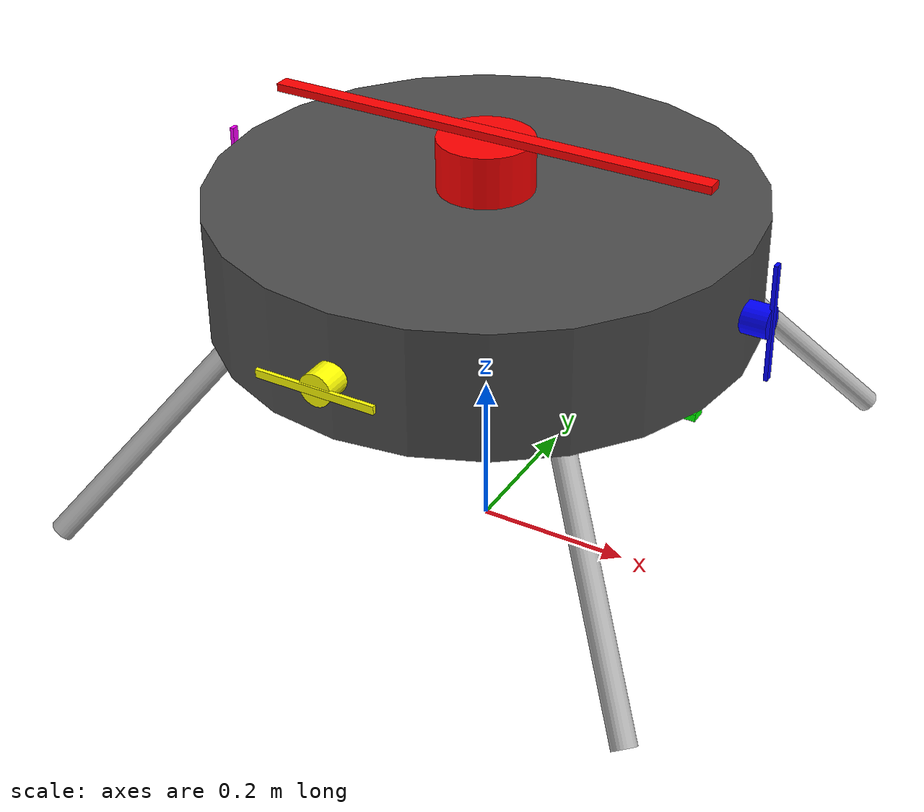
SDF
<?xml version="1.0" encoding="UTF-8"?>
<sdf version="1.9">
  <model name="ifodrone">

    <!-- START 1 METR NAD ZIEMIĄ -->
    <pose>0 0 0.4 0 0 0</pose>

    <!-- ================= KADŁUB ================= -->
    <link name="base_link">
      <pose>0 0 0 0 0 0</pose>
      <inertial>
        <mass>2.0</mass>
        <inertia>
          <ixx>0.03</ixx>
          <iyy>0.03</iyy>
          <izz>0.05</izz>
        </inertia>
      </inertial>

      <collision name="base_collision">
        <geometry>
          <cylinder>
            <radius>0.34</radius>
            <length>0.16</length>
          </cylinder>
        </geometry>
      </collision>

      <visual name="base_visual">
        <geometry>
          <cylinder>
            <radius>0.34</radius>
            <length>0.16</length>
          </cylinder>
        </geometry>
        <material>
          <diffuse>0.3 0.3 0.3 1</diffuse>
        </material>
      </visual>

      <!-- LEG FRONT RIGHT -->
      <collision name="leg_front_right_collision">
        <pose>0.3 -0.3 -0.20 -0.7854 0 0.7854</pose>
        <geometry>
          <cylinder>
            <radius>0.015</radius>
            <length>0.34</length>
          </cylinder>
        </geometry>
      </collision>

      <visual name="leg_front_right_visual">
        <pose>0.3 -0.3 -0.20 -0.7854 0 0.7854</pose>
        <geometry>
          <cylinder>
            <radius>0.015</radius>
            <length>0.34</length>
          </cylinder>
        </geometry>
      </visual>

      <!-- LEG FRONT LEFT -->
      <collision name="leg_front_left_collision">
        <pose>0.3 0.3 -0.20 -0.7854 0 2.3562</pose>
        <geometry>
          <cylinder>
            <radius>0.015</radius>
            <length>0.34</length>
          </cylinder>
        </geometry>
      </collision>

      <visual name="leg_front_left_visual">
        <pose>0.3 0.3 -0.20 -0.7854 0 2.3562</pose>
        <geometry>
          <cylinder>
            <radius>0.015</radius>
            <length>0.34</length>
          </cylinder>
        </geometry>
      </visual>

      <!-- LEG BACK RIGHT -->
      <collision name="leg_back_right_collision">
        <pose>-0.3 -0.3 -0.20 -0.7854 0 -0.7854</pose>
        <geometry>
          <cylinder>
            <radius>0.015</radius>
            <length>0.34</length>
          </cylinder>
        </geometry>
      </collision>

      <visual name="leg_back_right_visual">
        <pose>-0.3 -0.3 -0.20 -0.7854 0 -0.7854</pose>
        <geometry>
          <cylinder>
            <radius>0.015</radius>
            <length>0.34</length>
          </cylinder>
        </geometry>
      </visual>

      <!-- LEG BACK LEFT -->
      <collision name="leg_back_left_collision">
        <pose>-0.3 0.3 -0.20 -0.7854 0 -2.3562</pose>
        <geometry>
          <cylinder>
            <radius>0.015</radius>
            <length>0.34</length>
          </cylinder>
        </geometry>
      </collision>

      <visual name="leg_back_left_visual">
        <pose>-0.3 0.3 -0.20 -0.7854 0 -2.3562</pose>
        <geometry>
          <cylinder>
            <radius>0.015</radius>
            <length>0.34</length>
          </cylinder>
        </geometry>
      </visual>

<!-- ================= SENSORY ================= -->
      <sensor name="air_pressure_sensor" type="air_pressure">
        <pose>0 0 0 0 0 0</pose>
        <always_on>1</always_on>
        <update_rate>50</update_rate>
        <air_pressure>
          <!-- Noise modeled after BMP390 -->
          <pressure>
            <noise type="gaussian">
              <mean>0</mean>
              <stddev>3</stddev>
            </noise>
          </pressure>
        </air_pressure>
      </sensor>
      <sensor name="magnetometer_sensor" type="magnetometer">
        <pose>0 0 0 0 0 0</pose>
        <always_on>1</always_on>
        <update_rate>100</update_rate>
        <magnetometer>
          <!-- TODO: update to fix units and coordinate system when we move past Harmonic -->
          <!-- See https://github.com/gazebosim/gz-sim/pull/2460 -->
          <!-- 3mgauss RMS: NOTE: noise is in tesla but sensor reports data in gauss -->
          <!-- Noise modeled after IIS2MDC -->
          <x>
            <noise type="gaussian">
              <stddev>0.0001</stddev>
            </noise>
          </x>
          <y>
            <noise type="gaussian">
              <stddev>0.0001</stddev>
            </noise>
          </y>
          <z>
            <noise type="gaussian">
              <stddev>0.0001</stddev>
            </noise>
          </z>
        </magnetometer>
      </sensor>
      <sensor name="imu_sensor" type="imu">
        <pose>0 0 0 0 0 0</pose>
        <always_on>1</always_on>
        <update_rate>250</update_rate>
        <imu>
          <angular_velocity>
            <!-- Noise modeled after IIM42653 -->
            <!-- 0.05 deg/s converted to rad/s -->
            <x>
              <noise type="gaussian">
                <mean>0.0</mean>
                <stddev>0.0008726646</stddev>
              </noise>
            </x>
            <y>
              <noise type="gaussian">
                <mean>0.0</mean>
                <stddev>0.0008726646</stddev>
              </noise>
            </y>
            <z>
              <noise type="gaussian">
                <mean>0.0</mean>
                <stddev>0.0008726646</stddev>
              </noise>
            </z>
          </angular_velocity>
          <linear_acceleration>
            <!-- Noise modeled after IIM42653 -->
            <!-- X & Y axis: 0.65 mg-rms converted to m/ss -->
            <x>
              <noise type="gaussian">
                <mean>0.0</mean>
                <stddev>0.00637</stddev>
              </noise>
            </x>
            <y>
              <noise type="gaussian">
                <mean>0.0</mean>
                <stddev>0.00637</stddev>
              </noise>
            </y>
            <!-- Z axis: 0.70 mg-rms converted to m/ss-->
            <z>
              <noise type="gaussian">
                <mean>0.0</mean>
                <stddev>0.00686</stddev>
              </noise>
            </z>
          </linear_acceleration>
        </imu>
      </sensor>
      <sensor name="navsat_sensor" type="navsat">
        <pose>0 0 0 0 0 0</pose>
        <always_on>1</always_on>
        <update_rate>30</update_rate>
      </sensor>
    </link>

    <!-- ================= ROTOR 0 – MAIN ROTOR UP (RED) ================= -->
    <link name="rotor_0">
      <pose>0 0 0.1 0 0 0</pose>

      <inertial>
        <mass>0.05</mass>
        <inertia>
          <ixx>1e-4</ixx>
          <iyy>1e-4</iyy>
          <izz>1e-4</izz>
        </inertia>
      </inertial>

      <collision name="c">
        <geometry>
          <cylinder>
            <radius>0.06</radius>
            <length>0.09</length>
          </cylinder>
        </geometry>
      </collision>

      <visual name="motor_0">
        <geometry>
          <cylinder>
            <radius>0.06</radius>
            <length>0.09</length>
          </cylinder>
        </geometry>
        <material>
          <diffuse>1 0 0 1</diffuse>
        </material>
      </visual>

      <visual name="prop_0">
        <pose>0 0 0.05 0 0 0</pose>
        <geometry>
          <box>
            <size>0.58 0.02 0.01</size>
          </box>
        </geometry>
        <material>
          <diffuse>1 0 0 1</diffuse>
        </material>
      </visual>
    </link>

    <joint name="rotor_0_joint" type="revolute">
      <parent>base_link</parent>
      <child>rotor_0</child>
      <axis><xyz>0 0 1</xyz></axis>
    </joint>

    <!-- ================= ROTOR 1 – MAIN ROTOR DOWN (GREEN) ================= -->
    <link name="rotor_1">
      <pose>0 0 -0.1 0 0 0</pose>

      <inertial>
        <mass>0.05</mass>
        <inertia>
          <ixx>1e-4</ixx>
          <iyy>1e-4</iyy>
          <izz>1e-4</izz>
        </inertia>
      </inertial>

      <collision name="c">
        <geometry>
          <cylinder>
            <radius>0.06</radius>
            <length>0.09</length>
          </cylinder>
        </geometry>
      </collision>

      <visual name="motor_1">
        <geometry>
          <cylinder>
            <radius>0.06</radius>
            <length>0.09</length>
          </cylinder>
        </geometry>
      <material>
        <diffuse>0 1 0 1</diffuse>
      </material>
      </visual>

      <visual name="prop_1">
        <pose>0 0 -0.05 0 0 0</pose>
        <geometry>
          <box>
            <size>0.58 0.02 0.01</size>
          </box>
        </geometry>
      <material>
        <diffuse>0 1 0 1</diffuse>
      </material>
      </visual>
    </link>

    <joint name="rotor_1_joint" type="revolute">
      <parent>base_link</parent>
      <child>rotor_1</child>
      <axis><xyz>0 0 1</xyz></axis>
    </joint>

    <!-- ================= ROTOR 2 – FRONT EDF (BLUE) ================= -->
    <link name="rotor_2">
      <pose>0.35 0 0 0 1.57 0</pose>

      <inertial>
        <mass>0.05</mass>
        <inertia>
          <ixx>1e-4</ixx>
          <iyy>1e-4</iyy>
          <izz>1e-4</izz>
        </inertia>
      </inertial>

      <collision name="c">
        <geometry>
        <cylinder>
        <radius>0.02</radius>
        <length>0.04</length>
        </cylinder>
        </geometry>
      </collision>

      <visual name="motor_2">
        <geometry>
          <cylinder>
            <radius>0.02</radius>
            <length>0.04</length>
          </cylinder>
        </geometry>
        <material>
          <diffuse>0 0 1 1</diffuse>
        </material>
      </visual>

      <visual name="prop_2">
        <pose>0 0 0.02 0 0 0</pose>
        <geometry>
          <box>
            <size>0.15 0.01 0.005</size>
          </box>
        </geometry>
        <material>
          <diffuse>0 0 1 1</diffuse>
        </material>
      </visual>
    </link>

    <joint name="rotor_2_joint" type="revolute">
      <parent>base_link</parent>
      <child>rotor_2</child>
      <axis><xyz>0 0 1</xyz></axis>
    </joint>

    <!-- ================= ROTOR 3 – RIGHT EDF (YELLOW) ================= -->
    <link name="rotor_3">
      <pose>0 -0.35 0 1.57 0 0</pose>

      <inertial>
        <mass>0.05</mass>
        <inertia>
          <ixx>1e-4</ixx>
          <iyy>1e-4</iyy>
          <izz>1e-4</izz>
        </inertia>
      </inertial>

      <collision name="c">
        <geometry>
          <cylinder>
            <radius>0.02</radius>
            <length>0.04</length>
          </cylinder>
        </geometry>
      </collision>

      <visual name="motor_3">
        <geometry>
          <cylinder>
            <radius>0.02</radius>
            <length>0.04</length>
          </cylinder>
        </geometry>
        <material>
          <diffuse>1 1 0 1</diffuse>
        </material>
      </visual>

      <visual name="prop_3">
        <pose>0 0 0.02 0 0 0</pose>
        <geometry>
          <box>
            <size>0.15 0.01 0.005</size>
          </box>
        </geometry>
        <material>
          <diffuse>1 1 0 1</diffuse>
        </material>
      </visual>
    </link>

    <joint name="rotor_3_joint" type="revolute">
      <parent>base_link</parent>
      <child>rotor_3</child>
      <axis><xyz>0 0 -1</xyz></axis>
    </joint>

    <!-- ================= ROTOR 4 – BACK EDF (MAGENTA) ================= -->
    <link name="rotor_4">
      <pose>-0.35 0 0 0 1.57 0</pose>

      <inertial>
        <mass>0.05</mass>
        <inertia>
          <ixx>1e-4</ixx>
          <iyy>1e-4</iyy>
          <izz>1e-4</izz>
        </inertia>
      </inertial>

      <collision name="c">
        <geometry>
          <cylinder>
            <radius>0.02</radius>
            <length>0.04</length>
          </cylinder>
        </geometry>
      </collision>

      <visual name="motor_4">
        <geometry>
          <cylinder>
            <radius>0.02</radius>
            <length>0.04</length>
          </cylinder>
        </geometry>
        <material>
          <diffuse>1 0 1 1</diffuse>
        </material>
      </visual>

      <visual name="prop_4">
        <pose>0 0 -0.02 0 0 0</pose>
        <geometry>
          <box>
            <size>0.15 0.01 0.005</size>
          </box>
        </geometry>
        <material>
          <diffuse>1 0 1 1</diffuse>
        </material>
      </visual>
    </link>

    <joint name="rotor_4_joint" type="revolute">
      <parent>base_link</parent>
      <child>rotor_4</child>
      <axis><xyz>0 0 -1</xyz></axis>
    </joint>

    <!-- ================= ROTOR 5 – LEFT EDF (CYAN) ================= -->
    <link name="rotor_5">
      <pose>0 0.35 0 1.57 0 0</pose>

      <inertial>
        <mass>0.05</mass>
        <inertia>
          <ixx>1e-4</ixx>
          <iyy>1e-4</iyy> 0 0
          <izz>1e-4</izz>
        </inertia>
      </inertial>

      <collision name="c">
        <geometry>
          <cylinder>
            <radius>0.02</radius>
            <length>0.04</length>
          </cylinder>
        </geometry>
      </collision>

      <visual name="motor_5">
        <geometry>
          <cylinder>
            <radius>0.02</radius>
            <length>0.04</length>
          </cylinder>
        </geometry>
        <material>
          <diffuse>0 1 1 1</diffuse>
        </material>
      </visual>

      <visual name="prop_5">
        <pose>0 0 -0.02 0 0 0</pose>
        <geometry>
          <box>
          <size>0.15 0.01 0.005</size>
          </box>
        </geometry>
        <material>
          <diffuse>0 1 1 1</diffuse>
        </material>
      </visual>
    </link>

    <joint name="rotor_5_joint" type="revolute">
      <parent>base_link</parent>
      <child>rotor_5</child>
      <axis><xyz>0 0 1</xyz></axis>
    </joint>

    <!-- ================= PLUGINS – GENERUJĄ SIŁĘ ================= -->
    <!-- (DOKŁADNIE JAK WCZEŚNIEJ, NIE ZMIENIAJ) -->

    <!-- motor 0 -->
    <plugin filename="gz-sim-multicopter-motor-model-system"
            name="gz::sim::systems::MulticopterMotorModel">
      <jointName>rotor_0_joint</jointName>
      <linkName>rotor_0</linkName>
      <turningDirection>ccw</turningDirection>
      <commandSubTopic>command/motor_speed</commandSubTopic>
      <motorNumber>0</motorNumber>
      <motorType>velocity</motorType>
    </plugin>

    <!-- motor 1 -->
    <plugin filename="gz-sim-multicopter-motor-model-system"
            name="gz::sim::systems::MulticopterMotorModel">
      <jointName>rotor_1_joint</jointName>
      <linkName>rotor_1</linkName>
      <turningDirection>ccw</turningDirection>
      <commandSubTopic>command/motor_speed</commandSubTopic>
      <motorNumber>1</motorNumber>
      <motorType>velocity</motorType>
    </plugin>

    <!-- motor 2 -->
    <plugin filename="gz-sim-multicopter-motor-model-system"
            name="gz::sim::systems::MulticopterMotorModel">
      <jointName>rotor_2_joint</jointName>
      <linkName>rotor_2</linkName>
      <turningDirection>cw</turningDirection>
      <commandSubTopic>command/motor_speed</commandSubTopic>
      <motorNumber>2</motorNumber>
      <motorType>velocity</motorType>
    </plugin>

    <!-- motor 3 -->
    <plugin filename="gz-sim-multicopter-motor-model-system"
            name="gz::sim::systems::MulticopterMotorModel">
      <jointName>rotor_3_joint</jointName>
      <linkName>rotor_3</linkName>
      <turningDirection>cw</turningDirection>
      <commandSubTopic>command/motor_speed</commandSubTopic>
      <motorNumber>3</motorNumber>
      <motorType>velocity</motorType>
    </plugin>

    <!-- motor 4 -->
    <plugin filename="gz-sim-multicopter-motor-model-system"
            name="gz::sim::systems::MulticopterMotorModel">
      <jointName>rotor_4_joint</jointName>
      <linkName>rotor_4</linkName>
      <turningDirection>cw</turningDirection>
      <commandSubTopic>command/motor_speed</commandSubTopic>
      <motorNumber>4</motorNumber>
      <motorType>velocity</motorType>
    </plugin>

    <!-- motor 5 -->
    <plugin filename="gz-sim-multicopter-motor-model-system"
            name="gz::sim::systems::MulticopterMotorModel">
      <jointName>rotor_5_joint</jointName>
      <linkName>rotor_5</linkName>
      <turningDirection>cw</turningDirection>
      <commandSubTopic>command/motor_speed</commandSubTopic>
      <motorNumber>5</motorNumber>
      <motorType>velocity</motorType>
    </plugin>

  </model>
</sdf>
